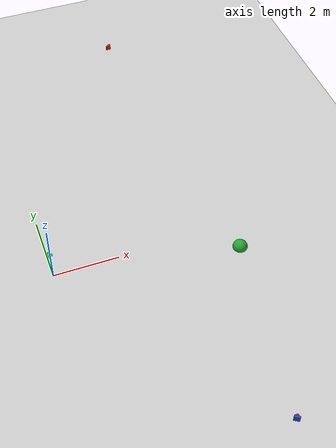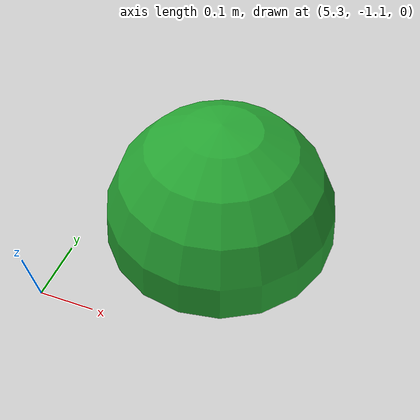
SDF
<sdf version='1.7'>
  <world name='default'>
    <plugin name='gazebo_ros_state' filename='libgazebo_ros_state.so'>
      <ros>
        <namespace>/simulation</namespace>
        <argument>model_states:=model_states_demo</argument>
      </ros>
      <update_rate>1.0</update_rate>
    </plugin>
    <light name='sun' type='directional'>
      <cast_shadows>1</cast_shadows>
      <pose>0 0 10 0 -0 0</pose>
      <diffuse>0.8 0.8 0.8 1</diffuse>
      <specular>0.2 0.2 0.2 1</specular>
      <attenuation>
        <range>1000</range>
        <constant>0.9</constant>
        <linear>0.01</linear>
        <quadratic>0.001</quadratic>
      </attenuation>
      <direction>-0.5 0.1 -0.9</direction>
      <spot>
        <inner_angle>0</inner_angle>
        <outer_angle>0</outer_angle>
        <falloff>0</falloff>
      </spot>
    </light>
    <model name='ground_plane'>
      <static>1</static>
      <link name='link'>
        <collision name='collision'>
          <geometry>
            <plane>
              <normal>0 0 1</normal>
              <size>100 100</size>
            </plane>
          </geometry>
          <surface>
            <contact>
              <collide_bitmask>65535</collide_bitmask>
              <ode/>
            </contact>
            <friction>
              <ode>
                <mu>100</mu>
                <mu2>50</mu2>
              </ode>
              <torsional>
                <ode/>
              </torsional>
            </friction>
            <bounce/>
          </surface>
          <max_contacts>10</max_contacts>
        </collision>
        <visual name='visual'>
          <cast_shadows>0</cast_shadows>
          <geometry>
            <plane>
              <normal>0 0 1</normal>
              <size>100 100</size>
            </plane>
          </geometry>
          <material>
            <script>
              <uri>file://media/materials/scripts/gazebo.material</uri>
              <name>Gazebo/Grey</name>
            </script>
          </material>
        </visual>
        <self_collide>0</self_collide>
        <enable_wind>0</enable_wind>
        <kinematic>0</kinematic>
      </link>
    </model>
    <gravity>0 0 0</gravity>
    <magnetic_field>6e-06 2.3e-05 -4.2e-05</magnetic_field>
    <atmosphere type='adiabatic'/>
    <physics type='ode'>
      <max_step_size>0.001</max_step_size>
      <real_time_factor>1</real_time_factor>
      <real_time_update_rate>1000</real_time_update_rate>
      <ode>
        <solver>
          <type>quick</type>
          <iters>0</iters>
          <sor>1.4</sor>
          <use_dynamic_moi_rescaling>0</use_dynamic_moi_rescaling>
        </solver>
        <constraints>
          <cfm>0</cfm>
          <erp>1</erp>
          <contact_max_correcting_vel>0</contact_max_correcting_vel>
          <contact_surface_layer>0</contact_surface_layer>
        </constraints>
      </ode>
    </physics>
    <scene>
      <ambient>0.4 0.4 0.4 1</ambient>
      <background>0.7 0.7 0.7 1</background>
      <shadows>1</shadows>
    </scene>
    <audio>
      <device>default</device>
    </audio>
    <wind/>
    <spherical_coordinates>
      <surface_model>EARTH_WGS84</surface_model>
      <latitude_deg>0</latitude_deg>
      <longitude_deg>0</longitude_deg>
      <elevation>0</elevation>
      <heading_deg>0</heading_deg>
    </spherical_coordinates>
    <model name='anytrack'>
      <joint name='cam0_joint' type='fixed'>
        <pose relative_to='__model__'>0 0 1 0 -0 0</pose>
        <parent>world</parent>
        <child>cam0_link</child>
      </joint>
      <link name='cam0_link'>
        <pose relative_to='cam0_joint'>0 0 0 0 -0 0</pose>
        <inertial>
          <pose>0 0 0 0 -0 0</pose>
          <mass>0.1</mass>
          <inertia>
            <ixx>0.000375</ixx>
            <ixy>0</ixy>
            <ixz>0</ixz>
            <iyy>0.0003075</iyy>
            <iyz>0</iyz>
            <izz>0.0003075</izz>
          </inertia>
        </inertial>
        <collision name='cam0_link_collision'>
          <pose>0 0 0 0 -0 0</pose>
          <geometry>
            <box>
              <size>0.12 0.15 0.15</size>
            </box>
          </geometry>
          <surface>
            <contact>
              <ode/>
            </contact>
            <friction>
              <ode/>
              <torsional>
                <ode/>
              </torsional>
            </friction>
            <bounce/>
          </surface>
          <max_contacts>10</max_contacts>
        </collision>
        <visual name='cam0_link_visual'>
          <pose>-0.03 0 0 0 -0 0</pose>
          <geometry>
            <box>
              <size>0.06 0.15 0.15</size>
            </box>
          </geometry>
          <material>
            <script>
              <name>Gazebo/Green</name>
              <uri>file://media/materials/scripts/gazebo.material</uri>
            </script>
          </material>
        </visual>
        <visual name='cam0_link_visual_1'>
          <pose>0.03 0 0 3.14159 1.57079 3.14159</pose>
          <geometry>
            <cylinder>
              <length>0.06</length>
              <radius>0.04</radius>
            </cylinder>
          </geometry>
          <material>
            <script>
              <name>Gazebo/Green</name>
              <uri>file://media/materials/scripts/gazebo.material</uri>
            </script>
          </material>
        </visual>
        <sensor name='cam0' type='camera'>
          <update_rate>30</update_rate>
          <visualize>1</visualize>
          <camera name='cam0'>
            <horizontal_fov>1.39626</horizontal_fov>
            <image>
              <width>1280</width>
              <height>720</height>
              <format>R8G8B8</format>
            </image>
            <clip>
              <near>0.02</near>
              <far>300</far>
            </clip>
          </camera>
          <plugin name='cam0_controller' filename='libgazebo_ros_camera.so'>
            <frame_name>cam0_position</frame_name>
            <min_depth>0.1</min_depth>
            <max_depth>500</max_depth>
          </plugin>
        </sensor>
        <self_collide>0</self_collide>
        <enable_wind>0</enable_wind>
        <kinematic>0</kinematic>
      </link>
      <joint name='cam1_joint' type='fixed'>
        <pose relative_to='__model__'>4 7 2 0 0.1 -1</pose>
        <parent>world</parent>
        <child>cam1_link</child>
      </joint>
      <link name='cam1_link'>
        <pose relative_to='cam1_joint'>0 0 0 0 -0 0</pose>
        <inertial>
          <pose>0 0 0 0 -0 0</pose>
          <mass>0.1</mass>
          <inertia>
            <ixx>0.000375</ixx>
            <ixy>0</ixy>
            <ixz>0</ixz>
            <iyy>0.0003075</iyy>
            <iyz>0</iyz>
            <izz>0.0003075</izz>
          </inertia>
        </inertial>
        <collision name='cam1_link_collision'>
          <pose>0 0 0 0 -0 0</pose>
          <geometry>
            <box>
              <size>0.12 0.15 0.15</size>
            </box>
          </geometry>
          <surface>
            <contact>
              <ode/>
            </contact>
            <friction>
              <ode/>
              <torsional>
                <ode/>
              </torsional>
            </friction>
            <bounce/>
          </surface>
          <max_contacts>10</max_contacts>
        </collision>
        <visual name='cam1_link_visual'>
          <pose>-0.03 0 0 0 -0 0</pose>
          <geometry>
            <box>
              <size>0.06 0.15 0.15</size>
            </box>
          </geometry>
          <material>
            <script>
              <name>Gazebo/Red</name>
              <uri>file://media/materials/scripts/gazebo.material</uri>
            </script>
          </material>
        </visual>
        <visual name='cam1_link_visual_1'>
          <pose>0.03 0 0 3.14159 1.57079 3.14159</pose>
          <geometry>
            <cylinder>
              <length>0.06</length>
              <radius>0.04</radius>
            </cylinder>
          </geometry>
          <material>
            <script>
              <name>Gazebo/Red</name>
              <uri>file://media/materials/scripts/gazebo.material</uri>
            </script>
          </material>
        </visual>
        <sensor name='cam1' type='camera'>
          <update_rate>30</update_rate>
          <visualize>1</visualize>
          <camera name='cam1'>
            <horizontal_fov>1.49626</horizontal_fov>
            <image>
              <width>1280</width>
              <height>720</height>
              <format>R8G8B8</format>
            </image>
            <clip>
              <near>0.02</near>
              <far>300</far>
            </clip>
          </camera>
          <plugin name='cam1_controller' filename='libgazebo_ros_camera.so'>
            <frame_name>cam1_position</frame_name>
            <min_depth>0.1</min_depth>
            <max_depth>500</max_depth>
          </plugin>
        </sensor>
        <self_collide>0</self_collide>
        <enable_wind>0</enable_wind>
        <kinematic>0</kinematic>
      </link>
      <pose>0 0 0 0 -0 0</pose>
      <joint name='cam2_joint' type='fixed'>
        <pose relative_to='__model__'>4 -7 2 0 0.1 1</pose>
        <parent>world</parent>
        <child>cam2_link</child>
      </joint>
      <link name='cam2_link'>
        <pose relative_to='cam2_joint'>0 0 0 0 -0 0</pose>
        <inertial>
          <pose>0 0 0 0 -0 0</pose>
          <mass>0.1</mass>
          <inertia>
            <ixx>0.000375</ixx>
            <ixy>0</ixy>
            <ixz>0</ixz>
            <iyy>0.0003075</iyy>
            <iyz>0</iyz>
            <izz>0.0003075</izz>
          </inertia>
        </inertial>
        <collision name='cam2_link_collision'>
          <pose>0 0 0 0 -0 0</pose>
          <geometry>
            <box>
              <size>0.12 0.15 0.15</size>
            </box>
          </geometry>
          <surface>
            <contact>
              <ode/>
            </contact>
            <friction>
              <ode/>
              <torsional>
                <ode/>
              </torsional>
            </friction>
            <bounce/>
          </surface>
          <max_contacts>10</max_contacts>
        </collision>
        <visual name='cam2_link_visual'>
          <pose>-0.03 0 0 0 -0 0</pose>
          <geometry>
            <box>
              <size>0.06 0.15 0.15</size>
            </box>
          </geometry>
          <material>
            <script>
              <name>Gazebo/Blue</name>
              <uri>file://media/materials/scripts/gazebo.material</uri>
            </script>
          </material>
        </visual>
        <visual name='cam2_link_visual_1'>
          <pose>0.03 0 0 3.14159 1.57079 3.14159</pose>
          <geometry>
            <cylinder>
              <length>0.06</length>
              <radius>0.04</radius>
            </cylinder>
          </geometry>
          <material>
            <script>
              <name>Gazebo/Red</name>
              <uri>file://media/materials/scripts/gazebo.material</uri>
            </script>
          </material>
        </visual>
        <sensor name='cam2' type='camera'>
          <update_rate>30</update_rate>
          <visualize>1</visualize>
          <camera name='cam2'>
            <horizontal_fov>1.19626</horizontal_fov>
            <image>
              <width>1280</width>
              <height>720</height>
              <format>R8G8B8</format>
            </image>
            <clip>
              <near>0.02</near>
              <far>300</far>
            </clip>
          </camera>
          <plugin name='cam2_controller' filename='libgazebo_ros_camera.so'>
            <frame_name>cam2_position</frame_name>
            <min_depth>0.1</min_depth>
            <max_depth>500</max_depth>
          </plugin>
        </sensor>
        <self_collide>0</self_collide>
        <enable_wind>0</enable_wind>
        <kinematic>0</kinematic>
      </link>
    </model>
    <gui fullscreen='0'>
      <camera name='user_camera'>
        <pose>-2.95014 6.66356 3.56925 0 0.215405 -0.512489</pose>
        <view_controller>orbit</view_controller>
        <projection_type>perspective</projection_type>
      </camera>
    </gui>
    <model name='ball'>
      <link name='link_0'>
        <inertial>
          <mass>95.5621</mass>
          <inertia>
            <ixx>1.93697</ixx>
            <ixy>0</ixy>
            <ixz>0</ixz>
            <iyy>1.93697</iyy>
            <iyz>0</iyz>
            <izz>1.93697</izz>
          </inertia>
          <pose>0 0 0 0 -0 0</pose>
        </inertial>
        <pose>0 0 0 0 -0 0</pose>
        <gravity>0</gravity>
        <self_collide>0</self_collide>
        <kinematic>0</kinematic>
        <enable_wind>0</enable_wind>
        <visual name='visual'>
          <pose>0 0 0 0 -0 0</pose>
          <geometry>
            <sphere>
              <radius>0.225107</radius>
            </sphere>
          </geometry>
          <material>
            <lighting>1</lighting>
            <script>
              <uri>file://media/materials/scripts/gazebo.material</uri>
              <name>Gazebo/Green</name>
            </script>
            <shader type='pixel'>
              <normal_map>__default__</normal_map>
            </shader>
            <ambient>0 1 0 1</ambient>
            <diffuse>0 1 0 1</diffuse>
            <specular>0 1 0 1</specular>
            <emissive>0 1 0 1</emissive>
          </material>
          <transparency>0</transparency>
          <cast_shadows>1</cast_shadows>
        </visual>
      </link>
      <static>0</static>
      <allow_auto_disable>1</allow_auto_disable>
      <pose>5.53954 -0.831899 0 0 -0 0</pose>
    </model>
  </world>
</sdf>
